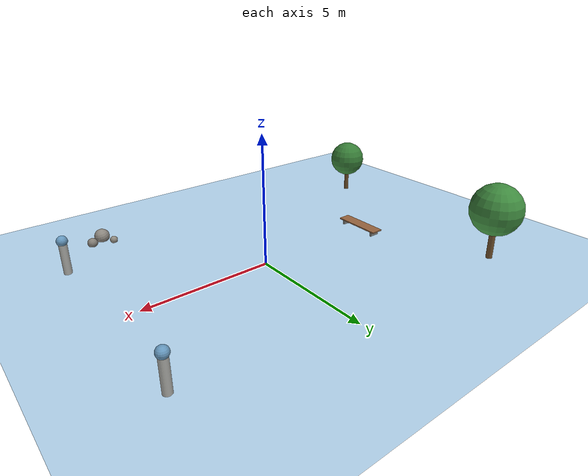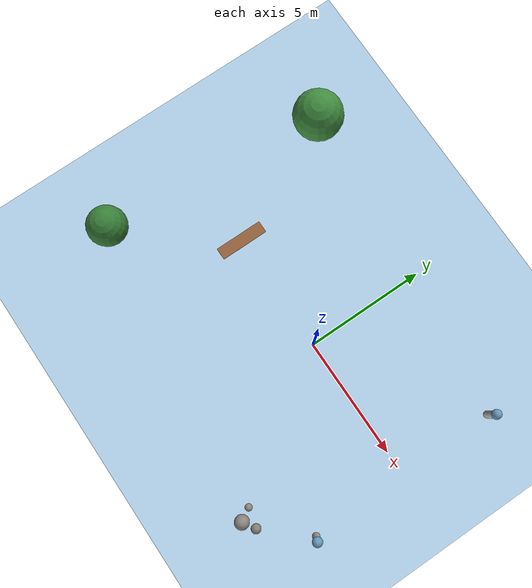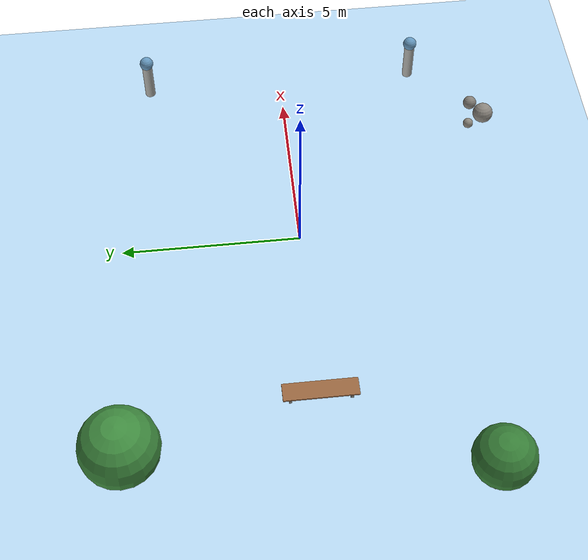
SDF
<?xml version="1.0" ?>
<sdf version="1.5">
    <world name="default">

        <physics type="ode">
            <max_step_size>0.0005</max_step_size>
            <real_time_factor>1</real_time_factor>
            <real_time_update_rate>2000</real_time_update_rate>
            <gravity>0 0 -9.81</gravity>
            <ode>
                <solver>
                    <type>quick</type>
                    <iters>50</iters>
                    <sor>1.3</sor>
                </solver>
                <constraints>
                    <cfm>0.0</cfm>
                    <erp>0.2</erp>
                    <contact_max_correcting_vel>10.0</contact_max_correcting_vel>
                    <contact_surface_layer>0.001</contact_surface_layer>
                </constraints>
            </ode>
        </physics>

        <!-- Scene: warm afternoon sky -->
        <scene>
            <ambient>0.6 0.6 0.6 1.0</ambient>
            <background>0.53 0.81 0.92 1.0</background>
            <shadows>true</shadows>
            <sky>
                <time>14</time>
                <sunrise>6</sunrise>
                <sunset>18</sunset>
                <clouds>
                    <speed>8</speed>
                    <humidity>0.4</humidity>
                    <mean_size>0.6</mean_size>
                </clouds>
            </sky>
        </scene>

        <!-- Sun light -->
        <include>
            <uri>model://sun</uri>
        </include>

        <!-- Soft fill light to reduce harsh shadows -->
        <light name="fill_light" type="directional">
            <pose>-5 5 10 0 0 0</pose>
            <diffuse>0.3 0.3 0.35 1</diffuse>
            <specular>0.05 0.05 0.05 1</specular>
            <direction>0.3 -0.3 -0.6</direction>
            <cast_shadows>false</cast_shadows>
        </light>

        <!-- Ground: large textured plane -->
        <model name="ground">
            <static>true</static>
            <link name="ground_link">
                <collision name="ground_collision">
                    <geometry>
                        <plane>
                            <normal>0 0 1</normal>
                            <size>100 100</size>
                        </plane>
                    </geometry>
                    <surface>
                        <friction>
                            <ode>
                                <mu>1.0</mu>
                                <mu2>1.0</mu2>
                            </ode>
                        </friction>
                    </surface>
                </collision>
                <visual name="ground_visual">
                    <geometry>
                        <plane>
                            <normal>0 0 1</normal>
                            <size>100 100</size>
                        </plane>
                    </geometry>
                    <material>
                        <script>
                            <uri>file://media/materials/scripts/gazebo.material</uri>
                            <name>Gazebo/Grey</name>
                        </script>
                        <ambient>0.72 0.85 0.95 1</ambient>
                        <diffuse>0.72 0.85 0.95 1</diffuse>
                    </material>
                </visual>
            </link>
        </model>

        <!-- Pillar A: slim decorative column -->
        <model name="pillar_a">
            <static>true</static>
            <link name="pillar_a_link">
                <pose>6 4 0.6 0 0 0</pose>
                <collision name="pillar_a_col">
                    <geometry>
                        <cylinder>
                            <radius>0.15</radius>
                            <length>1.2</length>
                        </cylinder>
                    </geometry>
                </collision>
                <visual name="pillar_a_vis">
                    <geometry>
                        <cylinder>
                            <radius>0.15</radius>
                            <length>1.2</length>
                        </cylinder>
                    </geometry>
                    <material>
                        <ambient>0.6 0.6 0.58 1</ambient>
                        <diffuse>0.7 0.7 0.68 1</diffuse>
                        <specular>0.3 0.3 0.3 1</specular>
                    </material>
                </visual>
            </link>
            <!-- Sphere cap on pillar -->
            <link name="pillar_a_cap">
                <pose>6 4 1.3 0 0 0</pose>
                <visual name="cap_vis">
                    <geometry>
                        <sphere>
                            <radius>0.2</radius>
                        </sphere>
                    </geometry>
                    <material>
                        <ambient>0.35 0.55 0.7 1</ambient>
                        <diffuse>0.4 0.6 0.75 1</diffuse>
                        <specular>0.4 0.4 0.4 1</specular>
                    </material>
                </visual>
            </link>
        </model>

        <!-- Pillar B: symmetric counterpart -->
        <model name="pillar_b">
            <static>true</static>
            <link name="pillar_b_link">
                <pose>6 -4 0.6 0 0 0</pose>
                <collision name="pillar_b_col">
                    <geometry>
                        <cylinder>
                            <radius>0.15</radius>
                            <length>1.2</length>
                        </cylinder>
                    </geometry>
                </collision>
                <visual name="pillar_b_vis">
                    <geometry>
                        <cylinder>
                            <radius>0.15</radius>
                            <length>1.2</length>
                        </cylinder>
                    </geometry>
                    <material>
                        <ambient>0.6 0.6 0.58 1</ambient>
                        <diffuse>0.7 0.7 0.68 1</diffuse>
                        <specular>0.3 0.3 0.3 1</specular>
                    </material>
                </visual>
            </link>
            <link name="pillar_b_cap">
                <pose>6 -4 1.3 0 0 0</pose>
                <visual name="cap_vis">
                    <geometry>
                        <sphere>
                            <radius>0.2</radius>
                        </sphere>
                    </geometry>
                    <material>
                        <ambient>0.35 0.55 0.7 1</ambient>
                        <diffuse>0.4 0.6 0.75 1</diffuse>
                        <specular>0.4 0.4 0.4 1</specular>
                    </material>
                </visual>
            </link>
        </model>

        <!-- Low bench: simple seating element -->
        <model name="bench">
            <static>true</static>
            <link name="bench_seat">
                <pose>-5 0 0.225 0 0 0</pose>
                <collision name="bench_col">
                    <geometry>
                        <box>
                            <size>0.5 2.0 0.05</size>
                        </box>
                    </geometry>
                </collision>
                <visual name="bench_vis">
                    <geometry>
                        <box>
                            <size>0.5 2.0 0.05</size>
                        </box>
                    </geometry>
                    <material>
                        <ambient>0.55 0.35 0.2 1</ambient>
                        <diffuse>0.6 0.4 0.25 1</diffuse>
                    </material>
                </visual>
            </link>
            <link name="bench_leg_l">
                <pose>-5 -0.8 0.1 0 0 0</pose>
                <visual name="leg_l_vis">
                    <geometry>
                        <box>
                            <size>0.4 0.08 0.2</size>
                        </box>
                    </geometry>
                    <material>
                        <ambient>0.45 0.45 0.43 1</ambient>
                        <diffuse>0.5 0.5 0.48 1</diffuse>
                    </material>
                </visual>
            </link>
            <link name="bench_leg_r">
                <pose>-5 0.8 0.1 0 0 0</pose>
                <visual name="leg_r_vis">
                    <geometry>
                        <box>
                            <size>0.4 0.08 0.2</size>
                        </box>
                    </geometry>
                    <material>
                        <ambient>0.45 0.45 0.43 1</ambient>
                        <diffuse>0.5 0.5 0.48 1</diffuse>
                    </material>
                </visual>
            </link>
        </model>

        <!-- Tree-like element: trunk + canopy -->
        <model name="tree_1">
            <static>true</static>
            <link name="trunk">
                <pose>-7 5 0.75 0 0 0</pose>
                <collision name="trunk_col">
                    <geometry>
                        <cylinder>
                            <radius>0.12</radius>
                            <length>1.5</length>
                        </cylinder>
                    </geometry>
                </collision>
                <visual name="trunk_vis">
                    <geometry>
                        <cylinder>
                            <radius>0.12</radius>
                            <length>1.5</length>
                        </cylinder>
                    </geometry>
                    <material>
                        <ambient>0.4 0.28 0.15 1</ambient>
                        <diffuse>0.45 0.32 0.18 1</diffuse>
                    </material>
                </visual>
            </link>
            <link name="canopy">
                <pose>-7 5 2.0 0 0 0</pose>
                <visual name="canopy_vis">
                    <geometry>
                        <sphere>
                            <radius>1.0</radius>
                        </sphere>
                    </geometry>
                    <material>
                        <ambient>0.2 0.5 0.2 1</ambient>
                        <diffuse>0.25 0.55 0.25 1</diffuse>
                    </material>
                </visual>
            </link>
        </model>

        <!-- Tree 2: slightly different size -->
        <model name="tree_2">
            <static>true</static>
            <link name="trunk">
                <pose>-8 -4 0.6 0 0 0</pose>
                <collision name="trunk_col">
                    <geometry>
                        <cylinder>
                            <radius>0.1</radius>
                            <length>1.2</length>
                        </cylinder>
                    </geometry>
                </collision>
                <visual name="trunk_vis">
                    <geometry>
                        <cylinder>
                            <radius>0.1</radius>
                            <length>1.2</length>
                        </cylinder>
                    </geometry>
                    <material>
                        <ambient>0.38 0.26 0.13 1</ambient>
                        <diffuse>0.42 0.3 0.16 1</diffuse>
                    </material>
                </visual>
            </link>
            <link name="canopy">
                <pose>-8 -4 1.6 0 0 0</pose>
                <visual name="canopy_vis">
                    <geometry>
                        <sphere>
                            <radius>0.8</radius>
                        </sphere>
                    </geometry>
                    <material>
                        <ambient>0.18 0.45 0.18 1</ambient>
                        <diffuse>0.22 0.5 0.22 1</diffuse>
                    </material>
                </visual>
            </link>
        </model>

        <!-- Small rock cluster for natural feel -->
        <model name="rock_cluster">
            <static>true</static>
            <link name="rock_1">
                <pose>4 -6 0.15 0.1 0.2 0.5</pose>
                <visual name="rock_1_vis">
                    <geometry>
                        <sphere>
                            <radius>0.3</radius>
                        </sphere>
                    </geometry>
                    <material>
                        <ambient>0.5 0.48 0.45 1</ambient>
                        <diffuse>0.55 0.53 0.5 1</diffuse>
                    </material>
                </visual>
                <collision name="rock_1_col">
                    <geometry>
                        <sphere>
                            <radius>0.3</radius>
                        </sphere>
                    </geometry>
                </collision>
            </link>
            <link name="rock_2">
                <pose>4.5 -5.7 0.1 0.3 0.1 1.2</pose>
                <visual name="rock_2_vis">
                    <geometry>
                        <sphere>
                            <radius>0.2</radius>
                        </sphere>
                    </geometry>
                    <material>
                        <ambient>0.48 0.46 0.42 1</ambient>
                        <diffuse>0.52 0.5 0.47 1</diffuse>
                    </material>
                </visual>
            </link>
            <link name="rock_3">
                <pose>3.7 -5.5 0.08 0.4 0 0.8</pose>
                <visual name="rock_3_vis">
                    <geometry>
                        <sphere>
                            <radius>0.15</radius>
                        </sphere>
                    </geometry>
                    <material>
                        <ambient>0.52 0.5 0.47 1</ambient>
                        <diffuse>0.56 0.54 0.5 1</diffuse>
                    </material>
                </visual>
            </link>
        </model>

    </world>
</sdf>
